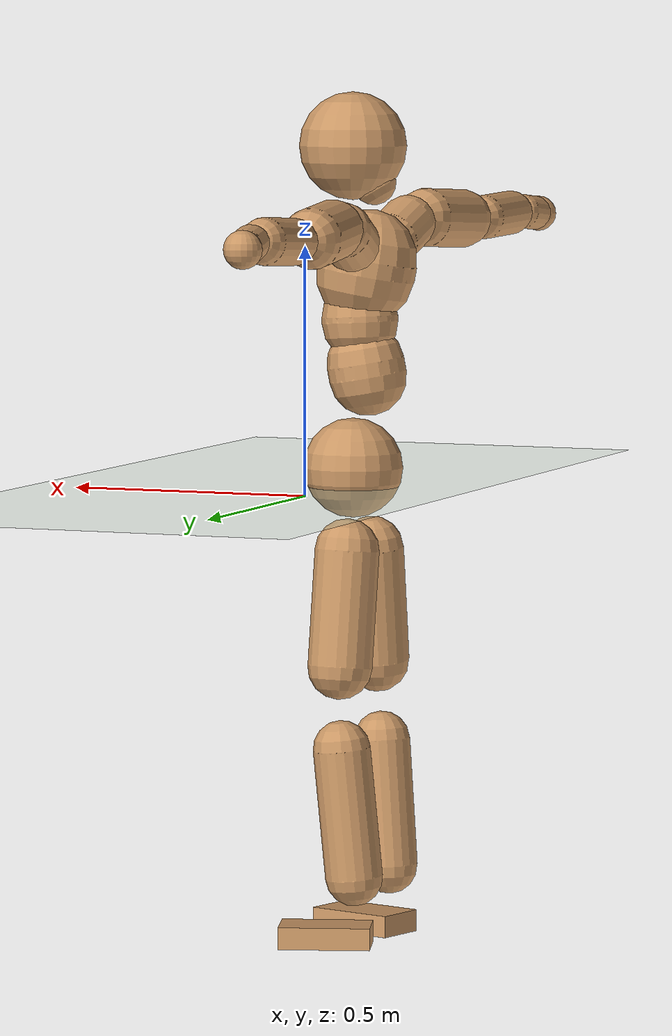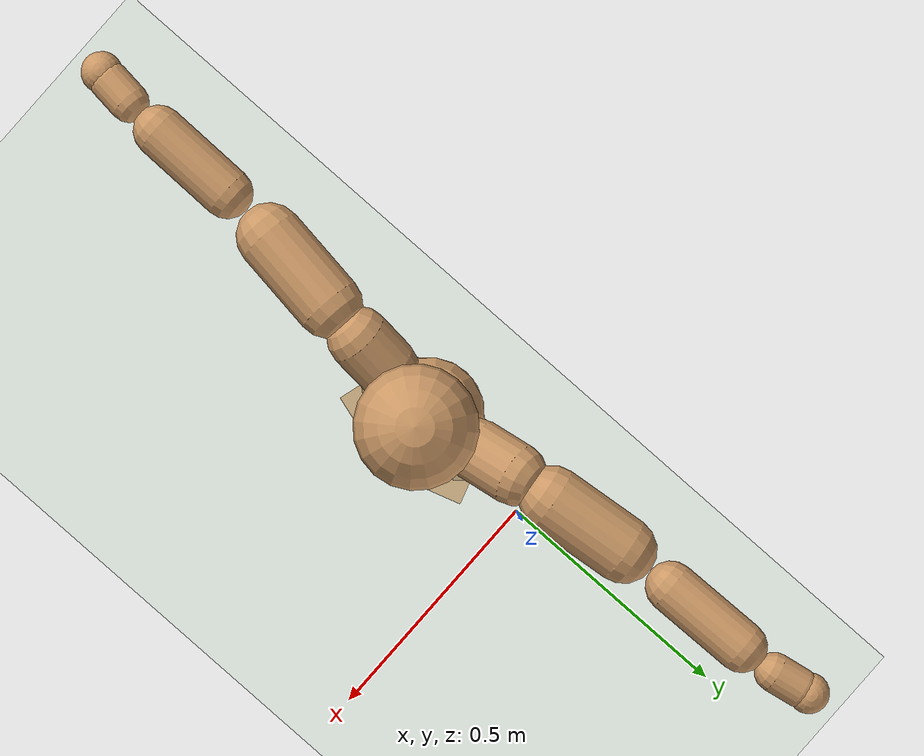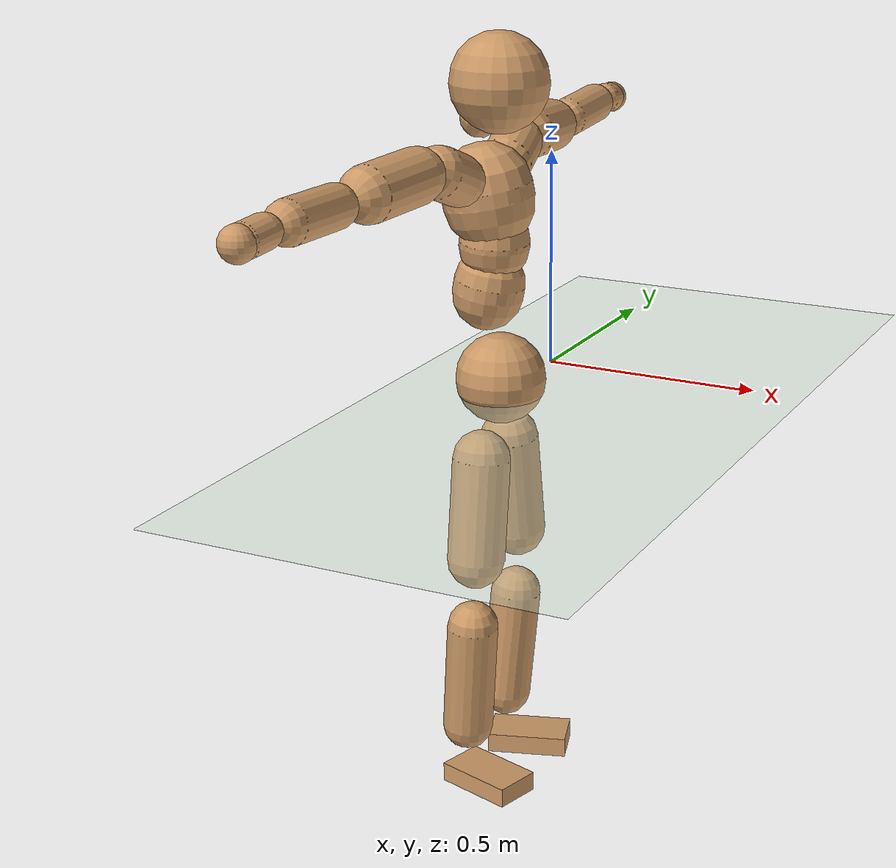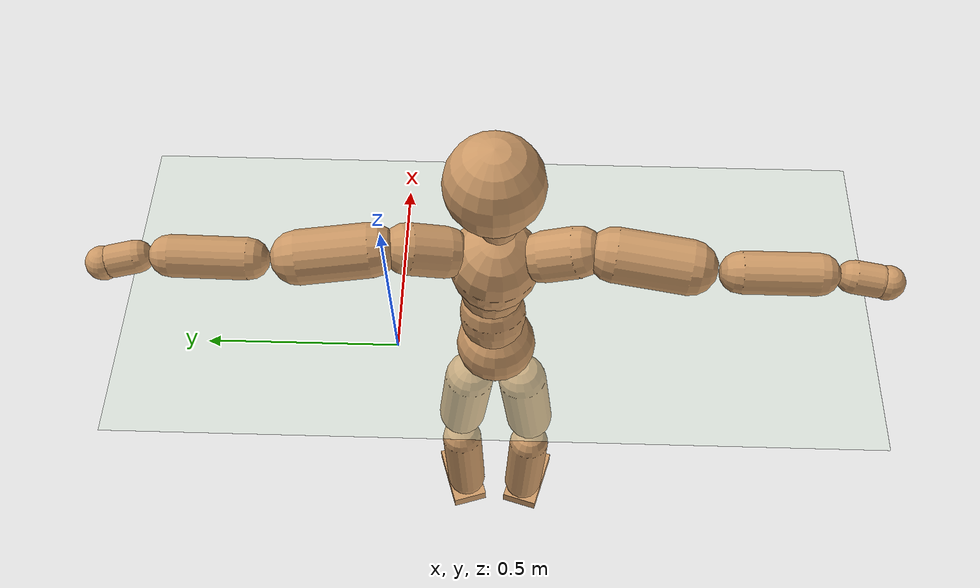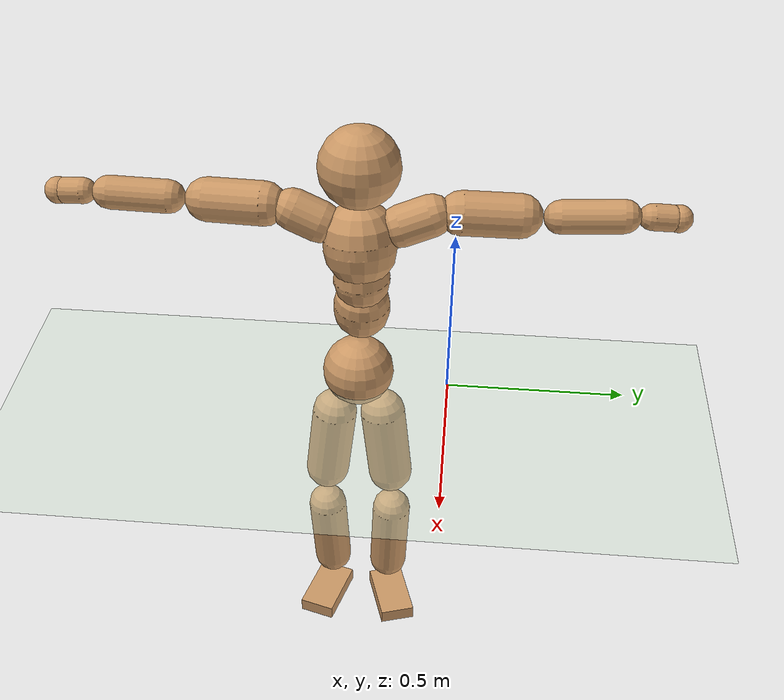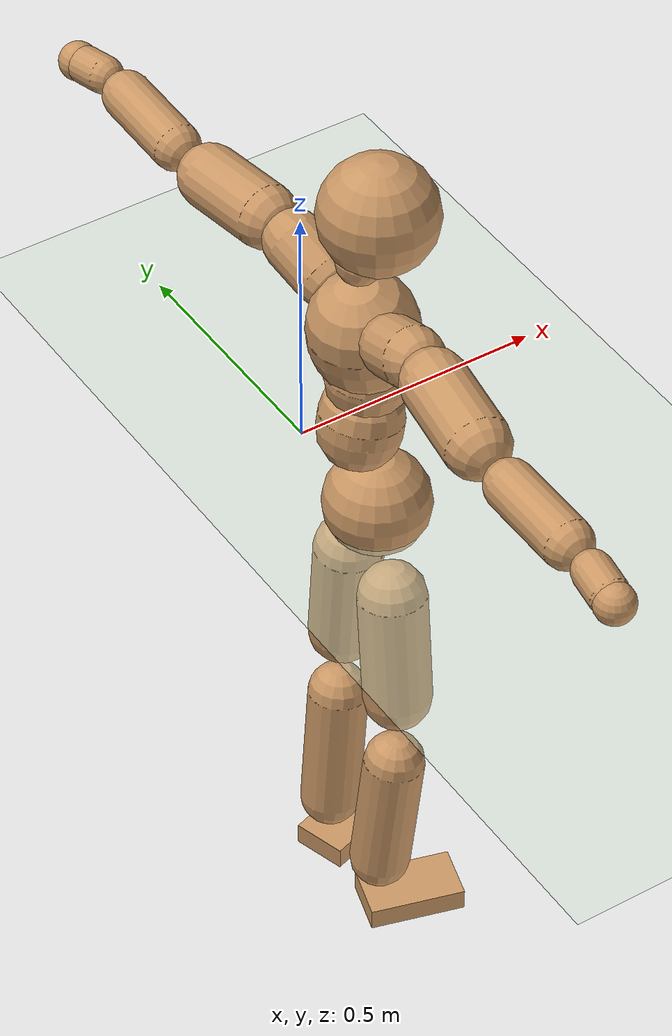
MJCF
<mujoco model="humanoid">
  <compiler coordinate="local"/>
  <default>
    <joint damping="0.0" armature="0.01" stiffness="0.0" limited="true"/>
    <geom conaffinity="1" condim="3" contype="7" margin="0.001" rgba="0.8 0.6 .4 1"/>
  </default>
  <asset>
    <texture type="skybox" builtin="gradient" rgb1=".4 .5 .6" rgb2="0 0 0" width="100" height="100"/>
    <texture builtin="flat" height="1278" mark="cross" markrgb="1 1 1" name="texgeom" random="0.01" rgb1="0.8 0.6 0.4" rgb2="0.8 0.6 0.4" type="cube" width="127"/>
    <texture builtin="checker" height="100" name="texplane" rgb1="0 0 0" rgb2="0.8 0.8 0.8" type="2d" width="100"/>
    <material name="MatPlane" reflectance="0.5" shininess="1" specular="1" texrepeat="60 60" texture="texplane"/>
    <material name="geom" texture="texgeom" texuniform="true"/>
  </asset>
  <worldbody>
    <light cutoff="100" diffuse="1 1 1" dir="-0 0 -1.3" directional="true" exponent="1" pos="0 0 1.3" specular=".1 .1 .1"/>
    <geom conaffinity="1" condim="3" name="floor" pos="0 0 0" rgba="0.8 0.9 0.8 1" size="100 100 .2" type="plane" material="MatPlane"/>
    <body name="Pelvis" pos="-0.003 -0.2568 0.0362">
      <freejoint name="Pelvis"/>
      <geom type="sphere" contype="1" conaffinity="1" density="500" size="0.1016" pos="0.0000 0.0000 0.0000" name="Pelvis"/>
      <body name="L_Hip" pos="-0.016 0.0619 -0.0847">
        <joint name="L_Hip_x" type="hinge" pos="0 0 0" axis="1 0 0" stiffness="800" damping="80" armature="0.02" range="-180.0000 180.0000"/>
        <joint name="L_Hip_y" type="hinge" pos="0 0 0" axis="0 1 0" stiffness="800" damping="80" armature="0.02" range="-180.0000 180.0000"/>
        <joint name="L_Hip_z" type="hinge" pos="0 0 0" axis="0 0 1" stiffness="800" damping="80" armature="0.02" range="-180.0000 180.0000"/>
        <geom type="capsule" contype="1" conaffinity="1" density="500" fromto="0.0017 0.0088 -0.0783 0.0067 0.0352 -0.3132" size="0.0658" name="L_Hip"/>
        <body name="L_Knee" pos="0.0084 0.044 -0.3915">
          <joint name="L_Knee_x" type="hinge" pos="0 0 0" axis="1 0 0" stiffness="800" damping="80" armature="0.02" range="-180.0000 180.0000"/>
          <joint name="L_Knee_y" type="hinge" pos="0 0 0" axis="0 1 0" stiffness="800" damping="80" armature="0.02" range="-180.0000 180.0000"/>
          <joint name="L_Knee_z" type="hinge" pos="0 0 0" axis="0 0 1" stiffness="800" damping="80" armature="0.02" range="-180.0000 180.0000"/>
          <geom type="capsule" contype="1" conaffinity="1" density="500" fromto="-0.0079 -0.0032 -0.0880 -0.0314 -0.0127 -0.3520" size="0.0584" name="L_Knee"/>
          <body name="L_Ankle" pos="-0.0393 -0.0158 -0.4401">
            <joint name="L_Ankle_x" type="hinge" pos="0 0 0" axis="1 0 0" stiffness="800" damping="80" armature="0.02" range="-180.0000 180.0000"/>
            <joint name="L_Ankle_y" type="hinge" pos="0 0 0" axis="0 1 0" stiffness="800" damping="80" armature="0.02" range="-180.0000 180.0000"/>
            <joint name="L_Ankle_z" type="hinge" pos="0 0 0" axis="0 0 1" stiffness="800" damping="80" armature="0.02" range="-180.0000 180.0000"/>
            <geom type="box" contype="1" conaffinity="1" density="500" pos="0.0634 0.0198 -0.0311" size="0.0933 0.053 0.0226" quat="0.9885 0.0000 0.0000 0.1511" name="L_Ankle"/>
            <body name="L_Toe" pos="0.1268 0.0397 -0.0622">
              <joint name="L_Toe_x" type="hinge" pos="0 0 0" axis="1 0 0" stiffness="500" damping="50" armature="0.02" range="-180.0000 180.0000"/>
              <joint name="L_Toe_y" type="hinge" pos="0 0 0" axis="0 1 0" stiffness="500" damping="50" armature="0.02" range="-180.0000 180.0000"/>
              <joint name="L_Toe_z" type="hinge" pos="0 0 0" axis="0 0 1" stiffness="500" damping="50" armature="0.02" range="-180.0000 180.0000"/>
              <geom type="box" contype="1" conaffinity="1" density="500" pos="0.0000 0.0000 0.0301" size="0.0011 0.0026 0.0011" quat="0.9878 0.0000 0.0000 0.1559" name="L_Toe"/>
            </body>
          </body>
        </body>
      </body>
      <body name="R_Hip" pos="-0.0123 -0.0633 -0.0925">
        <joint name="R_Hip_x" type="hinge" pos="0 0 0" axis="1 0 0" stiffness="800" damping="80" armature="0.02" range="-180.0000 180.0000"/>
        <joint name="R_Hip_y" type="hinge" pos="0 0 0" axis="0 1 0" stiffness="800" damping="80" armature="0.02" range="-180.0000 180.0000"/>
        <joint name="R_Hip_z" type="hinge" pos="0 0 0" axis="0 0 1" stiffness="800" damping="80" armature="0.02" range="-180.0000 180.0000"/>
        <geom type="capsule" contype="1" conaffinity="1" density="500" fromto="-0.0009 -0.0086 -0.0782 -0.0037 -0.0346 -0.3130" size="0.0652" name="R_Hip"/>
        <body name="R_Knee" pos="-0.0046 -0.0432 -0.3912">
          <joint name="R_Knee_x" type="hinge" pos="0 0 0" axis="1 0 0" stiffness="800" damping="80" armature="0.02" range="-180.0000 180.0000"/>
          <joint name="R_Knee_y" type="hinge" pos="0 0 0" axis="0 1 0" stiffness="800" damping="80" armature="0.02" range="-180.0000 180.0000"/>
          <joint name="R_Knee_z" type="hinge" pos="0 0 0" axis="0 0 1" stiffness="800" damping="80" armature="0.02" range="-180.0000 180.0000"/>
          <geom type="capsule" contype="1" conaffinity="1" density="500" fromto="-0.0072 0.0040 -0.0868 -0.0288 0.0160 -0.3472" size="0.0582" name="R_Knee"/>
          <body name="R_Ankle" pos="-0.036 0.0201 -0.434">
            <joint name="R_Ankle_x" type="hinge" pos="0 0 0" axis="1 0 0" stiffness="800" damping="80" armature="0.02" range="-180.0000 180.0000"/>
            <joint name="R_Ankle_y" type="hinge" pos="0 0 0" axis="0 1 0" stiffness="800" damping="80" armature="0.02" range="-180.0000 180.0000"/>
            <joint name="R_Ankle_z" type="hinge" pos="0 0 0" axis="0 0 1" stiffness="800" damping="80" armature="0.02" range="-180.0000 180.0000"/>
            <geom type="box" contype="1" conaffinity="1" density="500" pos="0.0672 -0.0193 -0.0320" size="0.0931 0.054 0.0223" quat="0.9902 0.0000 0.0000 -0.1397" name="R_Ankle"/>
            <body name="R_Toe" pos="0.1344 -0.0387 -0.064">
              <joint name="R_Toe_x" type="hinge" pos="0 0 0" axis="1 0 0" stiffness="500" damping="50" armature="0.02" range="-180.0000 180.0000"/>
              <joint name="R_Toe_y" type="hinge" pos="0 0 0" axis="0 1 0" stiffness="500" damping="50" armature="0.02" range="-180.0000 180.0000"/>
              <joint name="R_Toe_z" type="hinge" pos="0 0 0" axis="0 0 1" stiffness="500" damping="50" armature="0.02" range="-180.0000 180.0000"/>
              <geom type="box" contype="1" conaffinity="1" density="500" pos="0.0000 0.0000 0.0318" size="0.0011 0.0026 0.0011" quat="0.9914 0.0000 0.0000 -0.1310" name="R_Toe"/>
            </body>
          </body>
        </body>
      </body>
      <body name="Torso" pos="-0.0449 0.0045 0.1286">
        <joint name="Torso_x" type="hinge" pos="0 0 0" axis="1 0 0" stiffness="1000" damping="100" armature="0.02" range="-180.0000 180.0000"/>
        <joint name="Torso_y" type="hinge" pos="0 0 0" axis="0 1 0" stiffness="1000" damping="100" armature="0.02" range="-180.0000 180.0000"/>
        <joint name="Torso_z" type="hinge" pos="0 0 0" axis="0 0 1" stiffness="1000" damping="100" armature="0.02" range="-180.0000 180.0000"/>
        <geom type="capsule" contype="1" conaffinity="1" density="500" fromto="0.0154 0.0029 0.0867 0.0103 0.0019 0.0578" size="0.078864" name="Torso"/>
        <body name="Spine" pos="0.0257 0.0048 0.1445">
          <joint name="Spine_x" type="hinge" pos="0 0 0" axis="1 0 0" stiffness="1000" damping="100" armature="0.02" range="-180.0000 180.0000"/>
          <joint name="Spine_y" type="hinge" pos="0 0 0" axis="0 1 0" stiffness="1000" damping="100" armature="0.02" range="-180.0000 180.0000"/>
          <joint name="Spine_z" type="hinge" pos="0 0 0" axis="0 0 1" stiffness="1000" damping="100" armature="0.02" range="-180.0000 180.0000"/>
          <geom type="capsule" contype="1" conaffinity="1" density="500" fromto="0.0020 -0.0013 0.0357 0.0013 -0.0009 0.0238" size="0.078306" name="Spine"/>
          <body name="Chest" pos="0.0033 -0.0022 0.0594">
            <joint name="Chest_x" type="hinge" pos="0 0 0" axis="1 0 0" stiffness="1000" damping="100" armature="0.02" range="-180.0000 180.0000"/>
            <joint name="Chest_y" type="hinge" pos="0 0 0" axis="0 1 0" stiffness="1000" damping="100" armature="0.02" range="-180.0000 180.0000"/>
            <joint name="Chest_z" type="hinge" pos="0 0 0" axis="0 0 1" stiffness="1000" damping="100" armature="0.02" range="-180.0000 180.0000"/>
            <geom type="capsule" contype="1" conaffinity="1" density="500" fromto="-0.0164 -0.0051 0.0937 -0.0109 -0.0034 0.0625" size="0.10137" name="Chest"/>
            <body name="Neck" pos="-0.0379 -0.0141 0.2285">
              <joint name="Neck_x" type="hinge" pos="0 0 0" axis="1 0 0" stiffness="500" damping="50" armature="0.02" range="-180.0000 180.0000"/>
              <joint name="Neck_y" type="hinge" pos="0 0 0" axis="0 1 0" stiffness="500" damping="50" armature="0.02" range="-180.0000 180.0000"/>
              <joint name="Neck_z" type="hinge" pos="0 0 0" axis="0 0 1" stiffness="500" damping="50" armature="0.02" range="-180.0000 180.0000"/>
              <geom type="capsule" contype="1" conaffinity="1" density="500" fromto="0.0106 0.0022 0.0188 0.0426 0.0088 0.0751" size="0.04464" name="Neck"/>
              <body name="Head" pos="0.0532 0.011 0.0939">
                <joint name="Head_x" type="hinge" pos="0 0 0" axis="1 0 0" stiffness="500" damping="50" armature="0.02" range="-180.0000 180.0000"/>
                <joint name="Head_y" type="hinge" pos="0 0 0" axis="0 1 0" stiffness="500" damping="50" armature="0.02" range="-180.0000 180.0000"/>
                <joint name="Head_z" type="hinge" pos="0 0 0" axis="0 0 1" stiffness="500" damping="50" armature="0.02" range="-180.0000 180.0000"/>
                <geom type="sphere" contype="1" conaffinity="1" density="500" size="0.1094" pos="0.0000 0.0000 0.0000" name="Head"/>
              </body>
            </body>
            <body name="L_Thorax" pos="-0.0185 0.0773 0.1213">
              <joint name="L_Thorax_x" type="hinge" pos="0 0 0" axis="1 0 0" stiffness="500" damping="50" armature="0.02" range="-180.0000 180.0000"/>
              <joint name="L_Thorax_y" type="hinge" pos="0 0 0" axis="0 1 0" stiffness="500" damping="50" armature="0.02" range="-180.0000 180.0000"/>
              <joint name="L_Thorax_z" type="hinge" pos="0 0 0" axis="0 0 1" stiffness="500" damping="50" armature="0.02" range="-180.0000 180.0000"/>
              <geom type="capsule" contype="1" conaffinity="1" density="500" fromto="-0.0044 0.0264 0.0096 -0.0176 0.1058 0.0382" size="0.0577" name="L_Thorax"/>
              <body name="L_Shoulder" pos="-0.022 0.1322 0.0478">
                <joint name="L_Shoulder_x" type="hinge" pos="0 0 0" axis="1 0 0" stiffness="500" damping="50" armature="0.02" range="-720.0000 720.0000"/>
                <joint name="L_Shoulder_y" type="hinge" pos="0 0 0" axis="0 1 0" stiffness="500" damping="50" armature="0.02" range="-720.0000 720.0000"/>
                <joint name="L_Shoulder_z" type="hinge" pos="0 0 0" axis="0 0 1" stiffness="500" damping="50" armature="0.02" range="-720.0000 720.0000"/>
                <geom type="capsule" contype="1" conaffinity="1" density="500" fromto="-0.0054 0.0519 -0.0034 -0.0217 0.2075 -0.0135" size="0.0605" name="L_Shoulder"/>
                <body name="L_Elbow" pos="-0.0271 0.2593 -0.0169">
                  <joint name="L_Elbow_x" type="hinge" pos="0 0 0" axis="1 0 0" stiffness="500" damping="50" armature="0.02" range="-720.0000 720.0000"/>
                  <joint name="L_Elbow_y" type="hinge" pos="0 0 0" axis="0 1 0" stiffness="500" damping="50" armature="0.02" range="-720.0000 720.0000"/>
                  <joint name="L_Elbow_z" type="hinge" pos="0 0 0" axis="0 0 1" stiffness="500" damping="50" armature="0.02" range="-720.0000 720.0000"/>
                  <geom type="capsule" contype="1" conaffinity="1" density="500" fromto="-0.0009 0.0548 0.0030 -0.0037 0.2191 0.0120" size="0.0462" name="L_Elbow"/>
                  <body name="L_Wrist" pos="-0.0046 0.2738 0.015">
                    <joint name="L_Wrist_x" type="hinge" pos="0 0 0" axis="1 0 0" stiffness="300" damping="30" armature="0.02" range="-180.0000 180.0000"/>
                    <joint name="L_Wrist_y" type="hinge" pos="0 0 0" axis="0 1 0" stiffness="300" damping="30" armature="0.02" range="-180.0000 180.0000"/>
                    <joint name="L_Wrist_z" type="hinge" pos="0 0 0" axis="0 0 1" stiffness="300" damping="30" armature="0.02" range="-180.0000 180.0000"/>
                    <geom type="capsule" contype="1" conaffinity="1" density="500" fromto="-0.0032 0.0181 -0.0023 -0.0128 0.0723 -0.0091" size="0.0359" name="L_Wrist"/>
                    <body name="L_Hand" pos="-0.0161 0.0904 -0.0113">
                      <joint name="L_Hand_x" type="hinge" pos="0 0 0" axis="1 0 0" stiffness="300" damping="30" armature="0.02" range="-180.0000 180.0000"/>
                      <joint name="L_Hand_y" type="hinge" pos="0 0 0" axis="0 1 0" stiffness="300" damping="30" armature="0.02" range="-180.0000 180.0000"/>
                      <joint name="L_Hand_z" type="hinge" pos="0 0 0" axis="0 0 1" stiffness="300" damping="30" armature="0.02" range="-180.0000 180.0000"/>
                      <geom type="sphere" contype="1" conaffinity="1" density="500" size="0.0372" pos="0.0000 0.0000 0.0000" name="L_Hand"/>
                    </body>
                  </body>
                </body>
              </body>
            </body>
            <body name="R_Thorax" pos="-0.0253 -0.0886 0.1189">
              <joint name="R_Thorax_x" type="hinge" pos="0 0 0" axis="1 0 0" stiffness="500" damping="50" armature="0.02" range="-180.0000 180.0000"/>
              <joint name="R_Thorax_y" type="hinge" pos="0 0 0" axis="0 1 0" stiffness="500" damping="50" armature="0.02" range="-180.0000 180.0000"/>
              <joint name="R_Thorax_z" type="hinge" pos="0 0 0" axis="0 0 1" stiffness="500" damping="50" armature="0.02" range="-180.0000 180.0000"/>
              <geom type="capsule" contype="1" conaffinity="1" density="500" fromto="-0.0022 -0.0243 0.0100 -0.0087 -0.0972 0.0401" size="0.0574" name="R_Thorax"/>
              <body name="R_Shoulder" pos="-0.0109 -0.1215 0.0502">
                <joint name="R_Shoulder_x" type="hinge" pos="0 0 0" axis="1 0 0" stiffness="500" damping="50" armature="0.02" range="-720.0000 720.0000"/>
                <joint name="R_Shoulder_y" type="hinge" pos="0 0 0" axis="0 1 0" stiffness="500" damping="50" armature="0.02" range="-720.0000 720.0000"/>
                <joint name="R_Shoulder_z" type="hinge" pos="0 0 0" axis="0 0 1" stiffness="500" damping="50" armature="0.02" range="-720.0000 720.0000"/>
                <geom type="capsule" contype="1" conaffinity="1" density="500" fromto="-0.0073 -0.0532 -0.0029 -0.0292 -0.2130 -0.0116" size="0.0609" name="R_Shoulder"/>
                <body name="R_Elbow" pos="-0.0365 -0.2662 -0.0146">
                  <joint name="R_Elbow_x" type="hinge" pos="0 0 0" axis="1 0 0" stiffness="500" damping="50" armature="0.02" range="-720.0000 720.0000"/>
                  <joint name="R_Elbow_y" type="hinge" pos="0 0 0" axis="0 1 0" stiffness="500" damping="50" armature="0.02" range="-720.0000 720.0000"/>
                  <joint name="R_Elbow_z" type="hinge" pos="0 0 0" axis="0 0 1" stiffness="500" damping="50" armature="0.02" range="-720.0000 720.0000"/>
                  <geom type="capsule" contype="1" conaffinity="1" density="500" fromto="-0.0009 -0.0548 0.0009 -0.0034 -0.2191 0.0037" size="0.0464" name="R_Elbow"/>
                  <body name="R_Wrist" pos="-0.0043 -0.2739 0.0046">
                    <joint name="R_Wrist_x" type="hinge" pos="0 0 0" axis="1 0 0" stiffness="300" damping="30" armature="0.02" range="-180.0000 180.0000"/>
                    <joint name="R_Wrist_y" type="hinge" pos="0 0 0" axis="0 1 0" stiffness="300" damping="30" armature="0.02" range="-180.0000 180.0000"/>
                    <joint name="R_Wrist_z" type="hinge" pos="0 0 0" axis="0 0 1" stiffness="300" damping="30" armature="0.02" range="-180.0000 180.0000"/>
                    <geom type="capsule" contype="1" conaffinity="1" density="500" fromto="-0.0021 -0.0184 -0.0018 -0.0083 -0.0735 -0.0073" size="0.0362" name="R_Wrist"/>
                    <body name="R_Hand" pos="-0.0104 -0.0919 -0.0091">
                      <joint name="R_Hand_x" type="hinge" pos="0 0 0" axis="1 0 0" stiffness="300" damping="30" armature="0.02" range="-180.0000 180.0000"/>
                      <joint name="R_Hand_y" type="hinge" pos="0 0 0" axis="0 1 0" stiffness="300" damping="30" armature="0.02" range="-180.0000 180.0000"/>
                      <joint name="R_Hand_z" type="hinge" pos="0 0 0" axis="0 0 1" stiffness="300" damping="30" armature="0.02" range="-180.0000 180.0000"/>
                      <geom type="sphere" contype="1" conaffinity="1" density="500" size="0.0374" pos="0.0000 0.0000 0.0000" name="R_Hand"/>
                    </body>
                  </body>
                </body>
              </body>
            </body>
          </body>
        </body>
      </body>
    </body>
  </worldbody>
  <actuator>
    <motor name="L_Hip_x" joint="L_Hip_x" gear="500"/>
    <motor name="L_Hip_y" joint="L_Hip_y" gear="500"/>
    <motor name="L_Hip_z" joint="L_Hip_z" gear="500"/>
    <motor name="L_Knee_x" joint="L_Knee_x" gear="500"/>
    <motor name="L_Knee_y" joint="L_Knee_y" gear="500"/>
    <motor name="L_Knee_z" joint="L_Knee_z" gear="500"/>
    <motor name="L_Ankle_x" joint="L_Ankle_x" gear="500"/>
    <motor name="L_Ankle_y" joint="L_Ankle_y" gear="500"/>
    <motor name="L_Ankle_z" joint="L_Ankle_z" gear="500"/>
    <motor name="L_Toe_x" joint="L_Toe_x" gear="500"/>
    <motor name="L_Toe_y" joint="L_Toe_y" gear="500"/>
    <motor name="L_Toe_z" joint="L_Toe_z" gear="500"/>
    <motor name="R_Hip_x" joint="R_Hip_x" gear="500"/>
    <motor name="R_Hip_y" joint="R_Hip_y" gear="500"/>
    <motor name="R_Hip_z" joint="R_Hip_z" gear="500"/>
    <motor name="R_Knee_x" joint="R_Knee_x" gear="500"/>
    <motor name="R_Knee_y" joint="R_Knee_y" gear="500"/>
    <motor name="R_Knee_z" joint="R_Knee_z" gear="500"/>
    <motor name="R_Ankle_x" joint="R_Ankle_x" gear="500"/>
    <motor name="R_Ankle_y" joint="R_Ankle_y" gear="500"/>
    <motor name="R_Ankle_z" joint="R_Ankle_z" gear="500"/>
    <motor name="R_Toe_x" joint="R_Toe_x" gear="500"/>
    <motor name="R_Toe_y" joint="R_Toe_y" gear="500"/>
    <motor name="R_Toe_z" joint="R_Toe_z" gear="500"/>
    <motor name="Torso_x" joint="Torso_x" gear="500"/>
    <motor name="Torso_y" joint="Torso_y" gear="500"/>
    <motor name="Torso_z" joint="Torso_z" gear="500"/>
    <motor name="Spine_x" joint="Spine_x" gear="500"/>
    <motor name="Spine_y" joint="Spine_y" gear="500"/>
    <motor name="Spine_z" joint="Spine_z" gear="500"/>
    <motor name="Chest_x" joint="Chest_x" gear="500"/>
    <motor name="Chest_y" joint="Chest_y" gear="500"/>
    <motor name="Chest_z" joint="Chest_z" gear="500"/>
    <motor name="Neck_x" joint="Neck_x" gear="500"/>
    <motor name="Neck_y" joint="Neck_y" gear="500"/>
    <motor name="Neck_z" joint="Neck_z" gear="500"/>
    <motor name="Head_x" joint="Head_x" gear="500"/>
    <motor name="Head_y" joint="Head_y" gear="500"/>
    <motor name="Head_z" joint="Head_z" gear="500"/>
    <motor name="L_Thorax_x" joint="L_Thorax_x" gear="500"/>
    <motor name="L_Thorax_y" joint="L_Thorax_y" gear="500"/>
    <motor name="L_Thorax_z" joint="L_Thorax_z" gear="500"/>
    <motor name="L_Shoulder_x" joint="L_Shoulder_x" gear="500"/>
    <motor name="L_Shoulder_y" joint="L_Shoulder_y" gear="500"/>
    <motor name="L_Shoulder_z" joint="L_Shoulder_z" gear="500"/>
    <motor name="L_Elbow_x" joint="L_Elbow_x" gear="500"/>
    <motor name="L_Elbow_y" joint="L_Elbow_y" gear="500"/>
    <motor name="L_Elbow_z" joint="L_Elbow_z" gear="500"/>
    <motor name="L_Wrist_x" joint="L_Wrist_x" gear="500"/>
    <motor name="L_Wrist_y" joint="L_Wrist_y" gear="500"/>
    <motor name="L_Wrist_z" joint="L_Wrist_z" gear="500"/>
    <motor name="L_Hand_x" joint="L_Hand_x" gear="500"/>
    <motor name="L_Hand_y" joint="L_Hand_y" gear="500"/>
    <motor name="L_Hand_z" joint="L_Hand_z" gear="500"/>
    <motor name="R_Thorax_x" joint="R_Thorax_x" gear="500"/>
    <motor name="R_Thorax_y" joint="R_Thorax_y" gear="500"/>
    <motor name="R_Thorax_z" joint="R_Thorax_z" gear="500"/>
    <motor name="R_Shoulder_x" joint="R_Shoulder_x" gear="500"/>
    <motor name="R_Shoulder_y" joint="R_Shoulder_y" gear="500"/>
    <motor name="R_Shoulder_z" joint="R_Shoulder_z" gear="500"/>
    <motor name="R_Elbow_x" joint="R_Elbow_x" gear="500"/>
    <motor name="R_Elbow_y" joint="R_Elbow_y" gear="500"/>
    <motor name="R_Elbow_z" joint="R_Elbow_z" gear="500"/>
    <motor name="R_Wrist_x" joint="R_Wrist_x" gear="500"/>
    <motor name="R_Wrist_y" joint="R_Wrist_y" gear="500"/>
    <motor name="R_Wrist_z" joint="R_Wrist_z" gear="500"/>
    <motor name="R_Hand_x" joint="R_Hand_x" gear="500"/>
    <motor name="R_Hand_y" joint="R_Hand_y" gear="500"/>
    <motor name="R_Hand_z" joint="R_Hand_z" gear="500"/>
  </actuator>
  <contact>
    <exclude body1="Torso" body2="Chest"/>
    <exclude body1="Head" body2="Chest"/>
    <exclude body1="R_Knee" body2="R_Toe"/>
    <exclude body1="R_Knee" body2="L_Ankle"/>
    <exclude body1="R_Knee" body2="L_Toe"/>
    <exclude body1="L_Knee" body2="L_Toe"/>
    <exclude body1="L_Knee" body2="R_Ankle"/>
    <exclude body1="L_Knee" body2="R_Toe"/>
    <exclude body1="L_Shoulder" body2="Chest"/>
    <exclude body1="R_Shoulder" body2="Chest"/>
  </contact>
  <sensor/>
  <size njmax="700" nconmax="700"/>
</mujoco>
